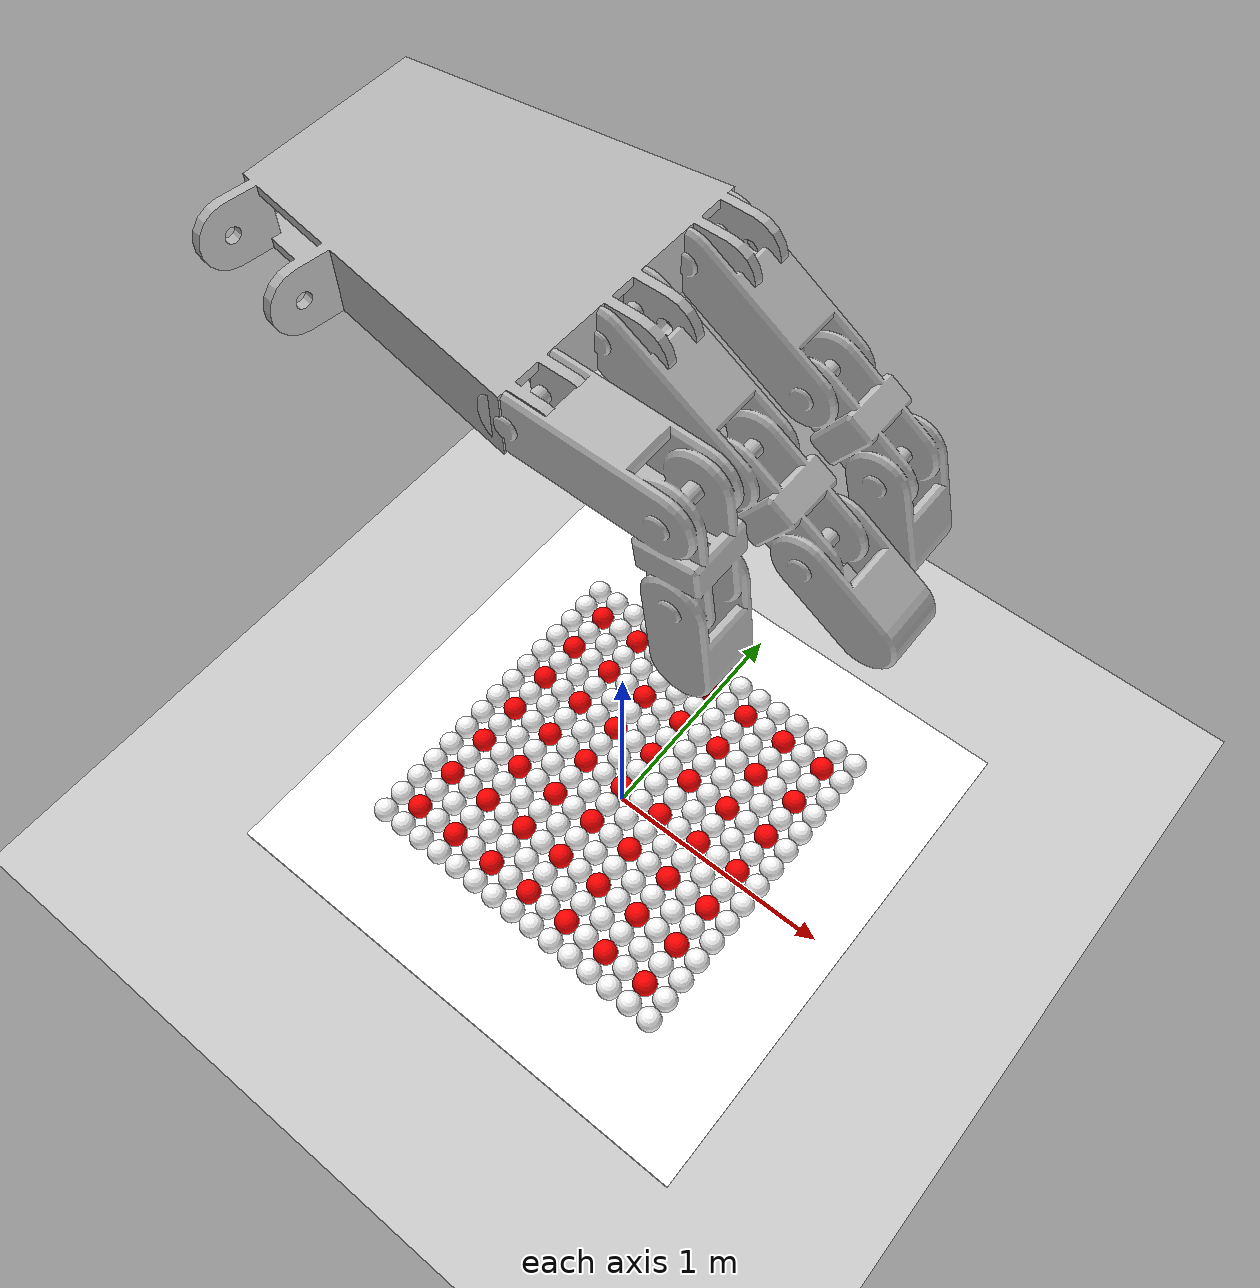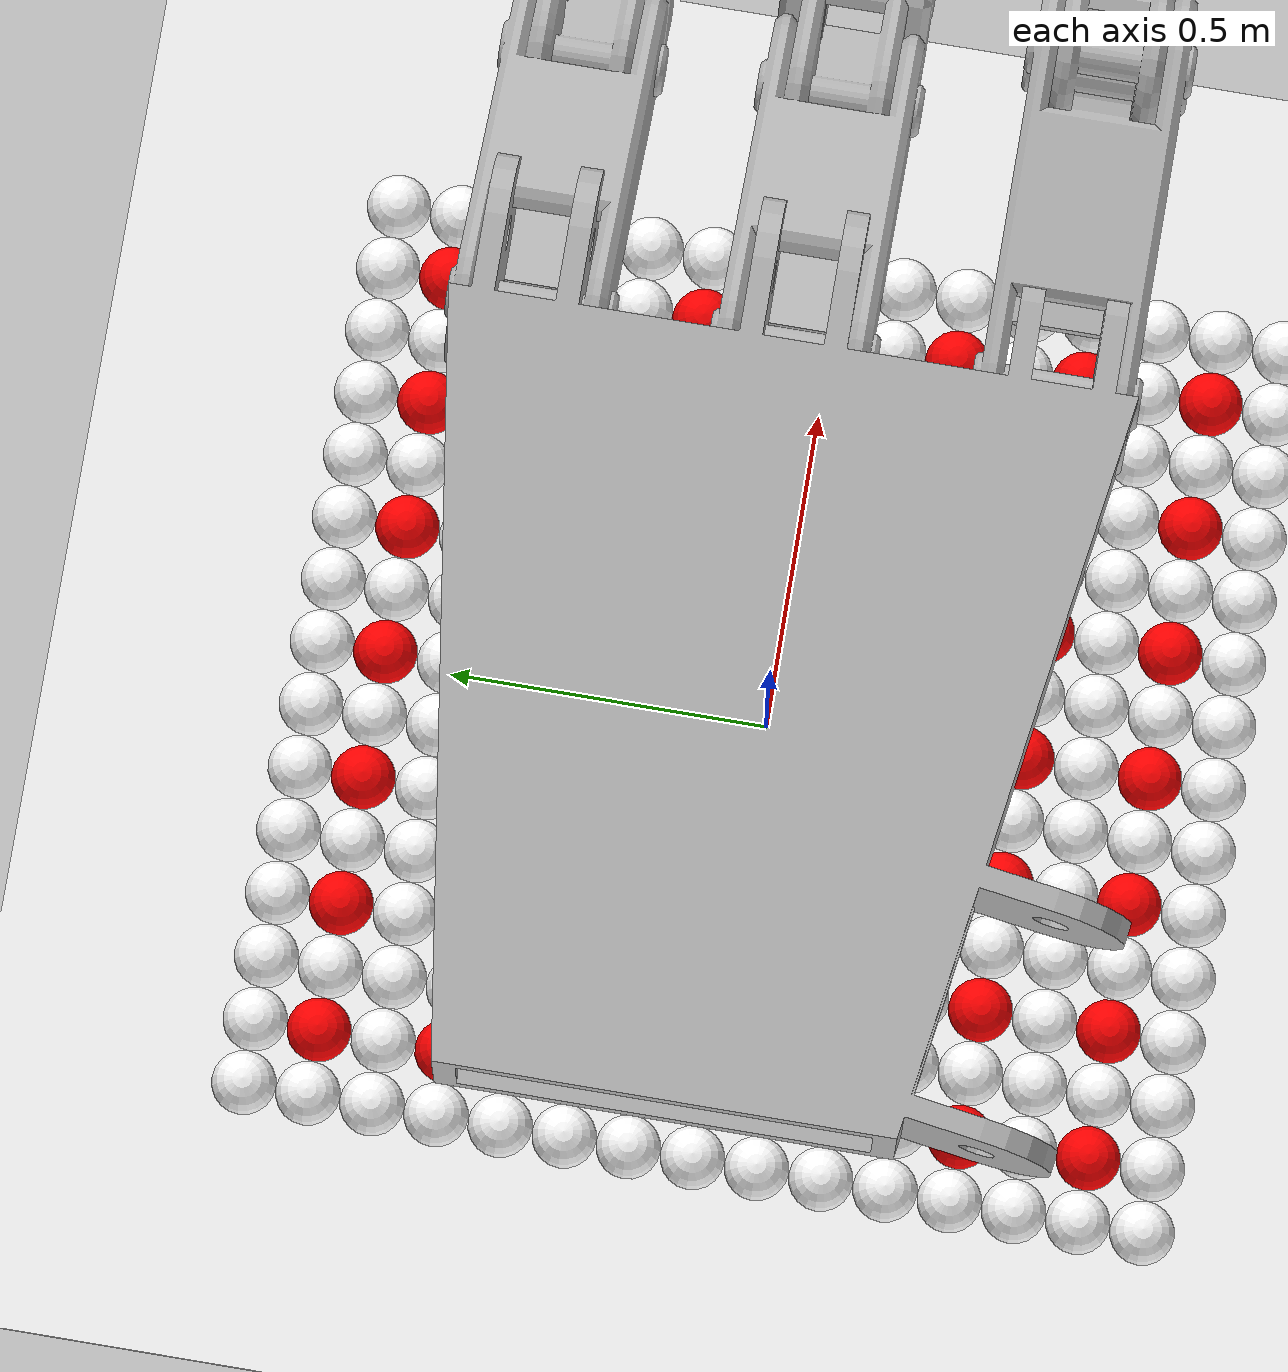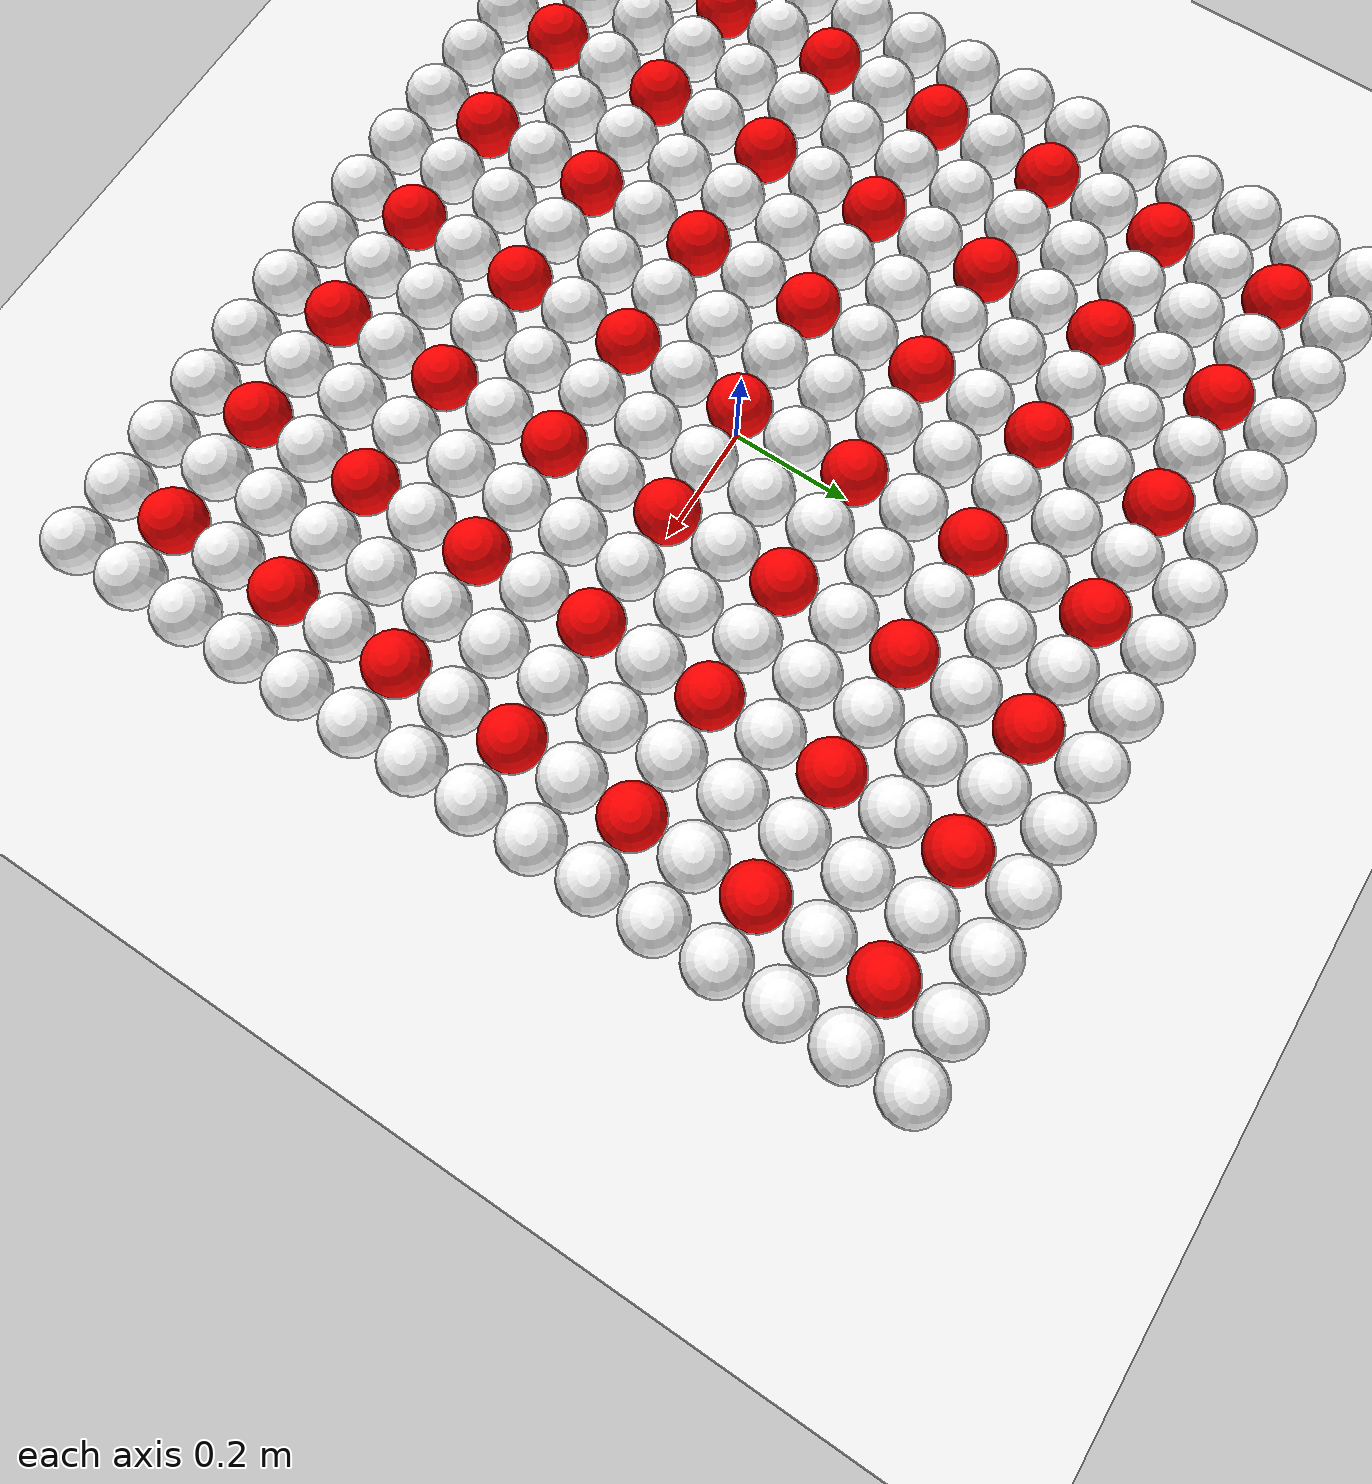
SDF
<?xml version="1.0"?>
<gazebo version="1.3">
<world name="default">

<include>
  <uri>model://ground_plane</uri>
</include>

<include>
  <uri>model://sun</uri>
</include>

<include>
  <uri>model://spring_board</uri>
</include>

<physics type="ode">
  <gravity>0.0 0.0 0.0</gravity>
  <ode>
    <solver>
      <iters>300</iters>
    </solver>
  </ode>
</physics>

<include>
  <uri>model://robot_hand</uri>
  <pose>0 0 2.8 0 0 -1.571</pose>
</include>

</world>
</gazebo>
